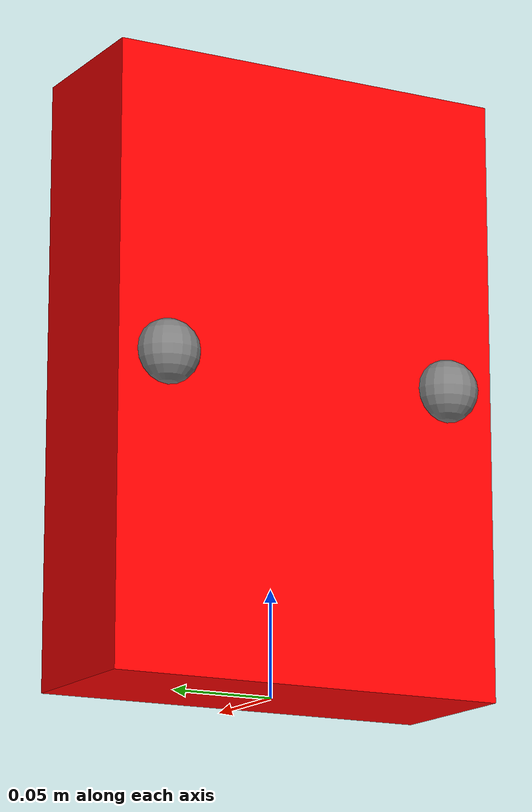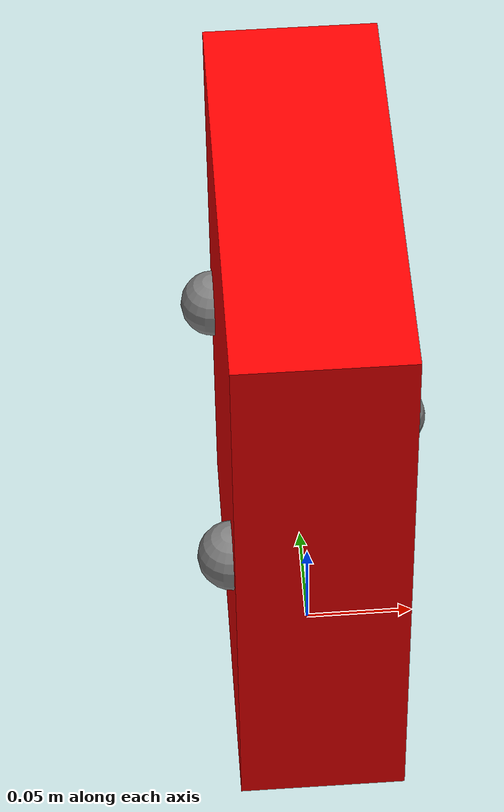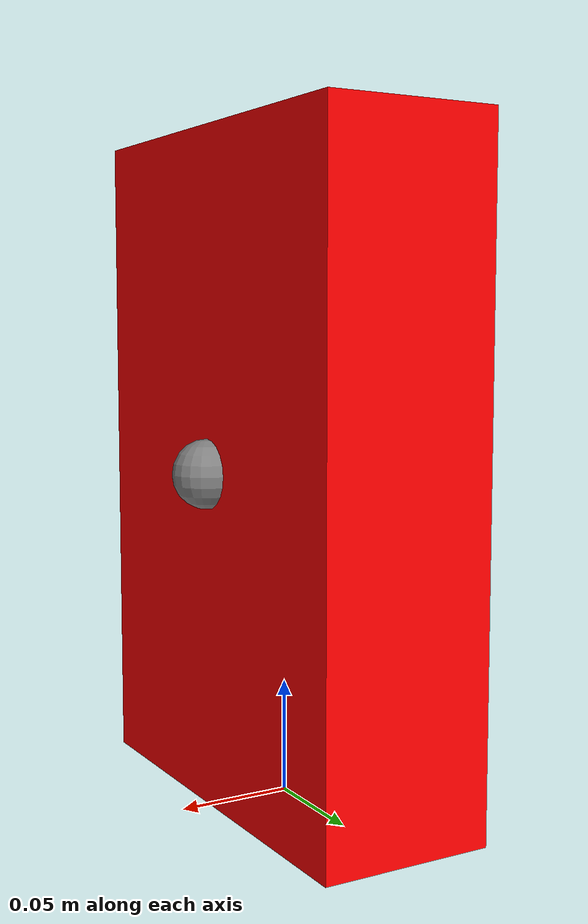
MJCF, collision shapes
<mujoco model="shape_cracker_box">
  <asset>
    <mesh name="cracker_box_mesh" file="meshes/003_cracker_box.msh"
      scale="1.136364 1.218750 1.380952" />
    <texture name="cracker_box_tex" type="2d" file="textures/003_cracker_box.png" />
    <material name="cracker_box_mat" texture="cracker_box_tex" />
  </asset>

  <worldbody>
    <body name="shape">
      <geom name="collision" type="box" size="0.0375 0.0975 0.145"
        pos="0.0 0.0 0.145" mass="0.453" rgba="1 0 0 0"/>
      <geom name="visual" type="mesh" mesh="cracker_box_mesh"
        material="cracker_box_mat" pos="0.015909 0.017063 0.002762"
        contype="0" conaffinity="0" mass="0" />
      <site name="attractor_site1" pos="0.0375 0.0 0.145" size="0.015" />
      <site name="attractor_site2" pos="-0.0375 0.073125 0.145" size="0.015" />
      <site name="attractor_site3" pos="-0.0375 -0.073125 0.145" size="0.015" />
    </body>
  </worldbody>
</mujoco>
